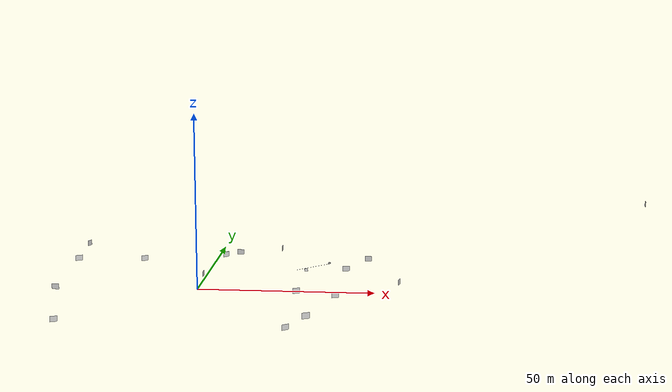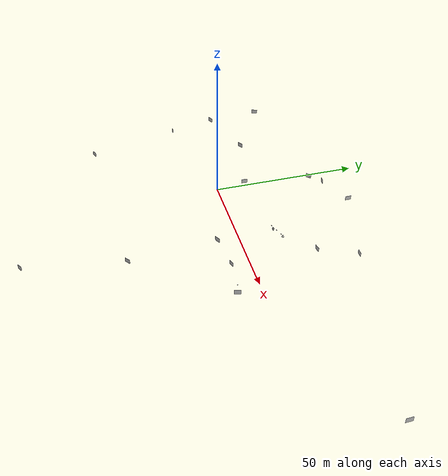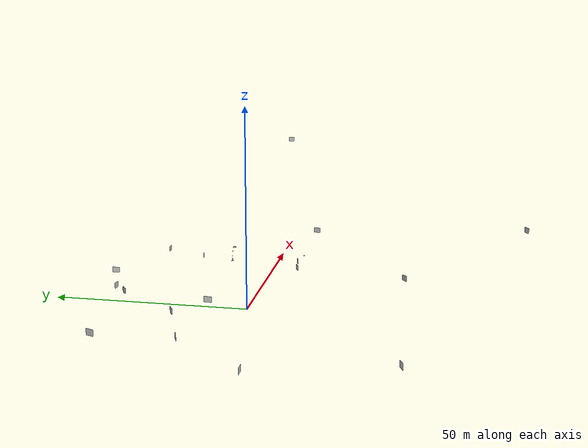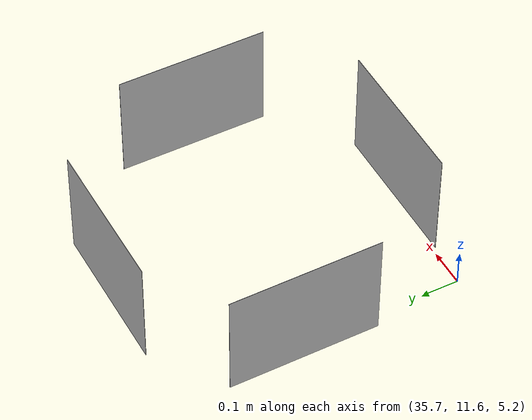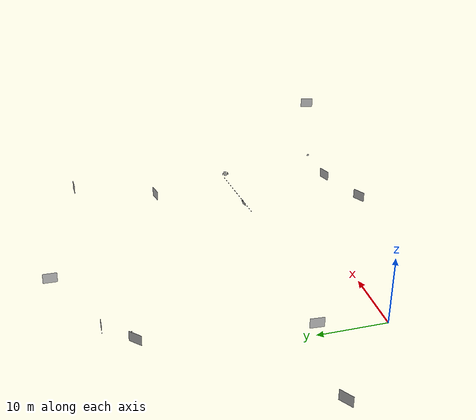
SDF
<sdf version="1.6">
 <world name="default">
  <plugin name="skyTimer" filename="libsky_timer.so"><total_minutes>35</total_minutes></plugin>
  <scene>
   <sky><time>8</time><sunrise>8</sunrise><sunset>18</sunset><clouds><speed>12</speed></clouds></sky>
   <grid>false</grid>
   <origin_visual>false</origin_visual>
   <shadows>false</shadows>
  </scene>
  <physics type="ode">
   <real_time_update_rate>500.0</real_time_update_rate>
   <max_step_size>0.002</max_step_size>
  </physics>
  <light name="sun" type="directional">
   <pose>0 0 -100 0 0 0</pose>
   <diffuse>0.8 0.8 0.8 1</diffuse>
   <specular>0.1 0.1 0.1 1</specular>
   <attenuation>
    <range>1000</range>
    <constant>0.9</constant>
    <linear>0.01</linear>
    <quadratic>0.001</quadratic>
   </attenuation>
   <direction>-0.5 0.5 -1</direction>
  </light>
  <model name="slide-0">
   <static>1</static>
   <link name="link">
    <pose>0 0 0.75 0 -0 0</pose>
    <visual name="visual">
     <geometry><box><size>2 0.001 1.5</size></box></geometry>
     <material>
      <script>
       <uri>model://slide-0/materials/scripts</uri>
       <uri>model://slide-0/materials/textures</uri>
       <name>Slides/slide_0</name>
      </script>
     </material>
    </visual>
   </link>
   <pose>38.69 -69.78 12.82 0 0 0.488187</pose>
  </model>
  <model name="slide-1">
   <static>1</static>
   <link name="link">
    <pose>0 0 0.75 0 -0 0</pose>
    <visual name="visual">
     <geometry><box><size>2 0.001 1.5</size></box></geometry>
     <material>
      <script>
       <uri>model://slide-1/materials/scripts</uri>
       <uri>model://slide-1/materials/textures</uri>
       <name>Slides/slide_1</name>
      </script>
     </material>
    </visual>
   </link>
   <pose>28.90 -7.731 1.695 0 0 0.5</pose>
  </model>
  <model name="slide-2">
   <static>1</static>
   <link name="link">
    <pose>0 0 0.75 0 -0 0</pose>
    <visual name="visual">
     <geometry><box><size>2 0.001 1.5</size></box></geometry>
     <material>
      <script>
       <uri>model://slide-2/materials/scripts</uri>
       <uri>model://slide-2/materials/textures</uri>
       <name>Slides/slide_2</name>
      </script>
     </material>
    </visual>
   </link>
   <pose>39.50 -6.121 0.2509 0 0 0.341</pose>
  </model>
  <model name="slide-3">
   <static>1</static>
   <link name="link">
    <pose>0 0 0.75 0 -0 0</pose>
    <visual name="visual">
     <geometry><box><size>2 0.001 1.5</size></box></geometry>
     <material>
      <script>
       <uri>model://slide-3/materials/scripts</uri>
       <uri>model://slide-3/materials/textures</uri>
       <name>Slides/slide_3</name>
      </script>
     </material>
    </visual>
   </link>
   <pose>57.37 -9.29 5.25 0 0 1.33</pose>
  </model>
  <model name="slide-4">
   <static>1</static>
   <link name="link">
    <pose>0 0 0.14 0 -0 0</pose>
    <visual name="visual">
     <geometry><box><size>0.373 0.001 0.28</size></box></geometry>
     <material>
      <script>
       <uri>model://slide-4/materials/scripts</uri>
       <uri>model://slide-4/materials/textures</uri>
       <name>Slides/slide_4</name>
      </script>
     </material>
    </visual>
   </link>
   <pose>48.51 -6.62 0 0 0 1.63</pose>
  </model>
  <model name="slide-5">
   <static>1</static>
   <link name="link">
    <pose>0 0 0.75 0 -0 0</pose>
    <visual name="visual">
     <geometry><box><size>2 0.001 1.5</size></box></geometry>
     <material>
      <script>
       <uri>model://slide-5/materials/scripts</uri>
       <uri>model://slide-5/materials/textures</uri>
       <name>Slides/slide_5</name>
      </script>
     </material>
    </visual>
   </link>
   <pose>0 10 1.26 0 -0 1.5</pose>
  </model>
  <model name="slide-6">
   <static>1</static>
   <link name="link">
    <pose>0 0 0.75 0 -0 0</pose>
    <visual name="visual">
     <geometry><box><size>2 0.001 1.5</size></box></geometry>
     <material>
      <script>
       <uri>model://slide-6/materials/scripts</uri>
       <uri>model://slide-6/materials/textures</uri>
       <name>Slides/slide_6</name>
      </script>
     </material>
    </visual>
   </link>
   <pose>-17.77 13.53 4.54 0 0 0.57</pose>
  </model>
  <model name="slide-7">
   <static>1</static>
   <link name="link">
    <pose>0 0 0.75 0 -0 0</pose>
    <visual name="visual">
     <geometry><box><size>2 0.001 1.5</size></box></geometry>
     <material>
      <script>
       <uri>model://slide-7/materials/scripts</uri>
       <uri>model://slide-7/materials/textures</uri>
       <name>Slides/slide_7</name>
      </script>
     </material>
    </visual>
   </link>
   <pose>-38.69 -7.40 1.22 0 0 0</pose>
  </model>
  <model name="slide-8">
   <static>1</static>
   <link name="link">
    <pose>0 0 0.15 0 -0 0</pose>
    <visual name="visual">
     <geometry><box><size>0.4 0.001 0.3</size></box></geometry>
     <material>
      <script>
       <uri>model://slide-8/materials/scripts</uri>
       <uri>model://slide-8/materials/textures</uri>
       <name>Slides/slide_8</name>
      </script>
     </material>
    </visual>
   </link>
   <pose>36.02 11.59 5.2 0 0 0</pose>
  </model>
  <model name="slide-9">
   <static>1</static>
   <link name="link">
    <pose>0 0 0.15 0 -0 0</pose>
    <visual name="visual">
     <geometry><box><size>0.4 0.001 0.3</size></box></geometry>
     <material>
      <script>
       <uri>model://slide-9/materials/scripts</uri>
       <uri>model://slide-9/materials/textures</uri>
       <name>Slides/slide_9</name>
      </script>
     </material>
    </visual>
   </link>
   <pose>36.42 11.95 5.2 0 0 1.57</pose>
  </model>
  <model name="slide-10">
   <static>1</static>
   <link name="link">
    <pose>0 0 0.15 0 -0 0</pose>
    <visual name="visual">
     <geometry><box><size>0.4 0.001 0.3</size></box></geometry>
     <material>
      <script>
       <uri>model://slide-10/materials/scripts</uri>
       <uri>model://slide-10/materials/textures</uri>
       <name>Slides/slide_10</name>
      </script>
     </material>
    </visual>
   </link>
   <pose>36.05 12.37 5.2 0 0 0</pose>
  </model>
  <model name="slide-11">
   <static>1</static>
   <link name="link">
    <pose>0 0 0.15 0 -0 0</pose>
    <visual name="visual">
     <geometry><box><size>0.4 0.001 0.3</size></box></geometry>
     <material>
      <script>
       <uri>model://slide-11/materials/scripts</uri>
       <uri>model://slide-11/materials/textures</uri>
       <name>Slides/slide_11</name>
      </script>
     </material>
    </visual>
   </link>
   <pose>35.67 12.04 5.2 0 0 1.57</pose>
  </model>
  <model name="slide-12">
   <link name="link">
    <pose>0 0 0.375 0 0 -0.066998</pose>
    <inertial><pose>0 -0.06 -0.4 0 0 0</pose><mass>2</mass></inertial>
    <visual name="visual">
     <pose>0 -0.06 0.04 0 0 0</pose>
     <geometry><box><size>1 0.001 0.75</size></box></geometry>
     <material>
      <script>
       <uri>model://slide-12/materials/scripts</uri>
       <uri>model://slide-12/materials/textures</uri>
       <name>Slides/slide_12</name>
      </script>
     </material>
    </visual>
    <visual name="cyl1">
     <pose>0.03431 -0.046425 0.573322 -2e-06 1.39818 -0.062822</pose>
     <geometry><cylinder><radius>0.0508222</radius><length>0.317208</length></cylinder></geometry>
     <material>
      <lighting>1</lighting>
      <script><uri>file://media/materials/scripts/gazebo.material</uri><name>Gazebo/Black</name></script>
     </material>
    </visual>
    <visual name="cyl2">
     <pose>0.04739 -0.053844 0.491524 0 -0 0</pose>
     <geometry><cylinder><radius>0.0289497</radius><length>0.183496</length></cylinder></geometry>
     <material>
      <lighting>1</lighting>
      <script><uri>file://media/materials/scripts/gazebo.material</uri><name>Gazebo/Black</name></script>
     </material>
    </visual>
   </link>
   <pose>29.5766 10.7955 3.0494 -0.349 0.0461 0.2552</pose>
   <joint name="bondinho_world" type="revolute">
    <pose>0.03431 -0.046425 0.573322 -2e-06 1.39818 -0.062822</pose>
    <parent>world</parent>
    <child>link</child>
    <axis><xyz>0 0 1</xyz></axis>
   </joint>
  </model>
  <model name="slide-13">
   <static>1</static>
   <link name="link">
    <pose>0 0 0.75 0 -0 0</pose>
    <visual name="visual">
     <geometry><box><size>2 0.001 1.5</size></box></geometry>
     <material>
      <script>
       <uri>model://slide-13/materials/scripts</uri>
       <uri>model://slide-13/materials/textures</uri>
       <name>Slides/slide_13</name>
      </script>
     </material>
    </visual>
   </link>
   <pose>45.618 34.68 0.3702 0 -0 0</pose>
  </model>
  <model name="slide-14">
   <static>1</static>
   <link name="link">
    <pose>0 0 0.75 0 -0 0</pose>
    <visual name="visual">
     <geometry><box><size>2 0.001 1.5</size></box></geometry>
     <material>
      <script>
       <uri>model://slide-14/materials/scripts</uri>
       <uri>model://slide-14/materials/textures</uri>
       <name>Slides/slide_14</name>
      </script>
     </material>
    </visual>
   </link>
   <pose>40 22.434 0.420 0 -0 0.18</pose>
  </model>
  <model name="slide-15">
   <static>1</static>
   <link name="link">
    <pose>0 0 0.75 0 -0 0</pose>
    <visual name="visual">
     <geometry><box><size>2 0.001 1.5</size></box></geometry>
     <material>
      <script>
       <uri>model://slide-15/materials/scripts</uri>
       <uri>model://slide-15/materials/textures</uri>
       <name>Slides/slide_15</name>
      </script>
     </material>
    </visual>
   </link>
   <pose>18.86 41.64 1.36 0 -0 1.56</pose>
  </model>
  <model name="slide-16">
   <link name="link">
    <pose>0 0 0.75 0 -0 0</pose>
    <visual name="visual">
     <geometry><box><size>2 0.001 1.5</size></box></geometry>
     <material>
      <script>
       <uri>model://slide-16/materials/scripts</uri>
       <uri>model://slide-16/materials/textures</uri>
       <name>Slides/slide_16</name>
      </script>
     </material>
    </visual>
    <collision name="collision_0">
     <pose>0 0 -0.25 0 -0 0</pose>
     <geometry><box><size>2 1 1</size></box></geometry>
    </collision>
   </link>
   <pose>6.76 36.64 1.173 0 0 -0.071</pose>
  </model>
  <model name="slide-17">
   <static>1</static>
   <link name="link">
    <pose>0 0 0.75 0 -0 0</pose>
    <visual name="visual">
     <geometry><box><size>2 0.001 1.5</size></box></geometry>
     <material>
      <script>
       <uri>model://slide-17/materials/scripts</uri>
       <uri>model://slide-17/materials/textures</uri>
       <name>Slides/slide_17</name>
      </script>
     </material>
    </visual>
    <collision name="collision"><geometry><box><size>2 0.001 1.5</size></box></geometry></collision>
    <visual name="LED">
     <pose>0.5 0 0.8 0 0 0</pose>
     <geometry><cylinder><length>0.16</length><radius>0.07</radius></cylinder></geometry>
     <plugin name="blink" filename="libBlinkVisualPlugin.so">
      <color_a>0 0 0 1</color_a>
      <color_b>0.8 0.4 0.1 1</color_b>
      <period>0.5</period>
      <use_wall_time>true</use_wall_time>
     </plugin>
    </visual>
   </link>
   <pose>2.899 32.986 1.25 0 0 0.739</pose>
  </model>
  <model name="slide-18">
   <static>1</static>
   <link name="link">
    <pose>0 0 0.75 0 -0 0</pose>
    <visual name="visual">
     <geometry><box><size>2 0.001 1.5</size></box></geometry>
     <material>
      <script>
       <uri>model://slide-18/materials/scripts</uri>
       <uri>model://slide-18/materials/textures</uri>
       <name>Slides/slide_18</name>
      </script>
     </material>
    </visual>
   </link>
   <pose>-36.65 24.81 5.92 0 0 1.2256</pose>
  </model>
  <model name="slide-19">
   <static>1</static>
   <link name="link">
    <pose>0 0 0.75 0 -0 0</pose>
    <visual name="visual">
     <geometry><box><size>2 0.001 1.5</size></box></geometry>
     <material>
      <script>
       <uri>model://slide-19/materials/scripts</uri>
       <uri>model://slide-19/materials/textures</uri>
       <name>Slides/slide_19</name>
      </script>
     </material>
    </visual>
   </link>
   <pose>-35.36 6.78 5.92 0 0 0.455</pose>
  </model>
  <model name="slide-20">
   <static>1</static>
   <link name="link">
    <pose>0 0 0.75 0 -0 0</pose>
    <visual name="visual">
     <geometry><box><size>2 0.001 1.5</size></box></geometry>
     <material>
      <script>
       <uri>model://slide-20/materials/scripts</uri>
       <uri>model://slide-20/materials/textures</uri>
       <name>Slides/slide_20</name>
      </script>
     </material>
    </visual>
   </link>
   <pose>-30.77 -38.86 1.204 0 0 0.40</pose>
  </model>
  <model name="slide-21">
   <static>1</static>
   <link name="link">
    <pose>0 0 0.75 0 -0 0</pose>
    <visual name="visual">
     <geometry><box><size>2 0.001 1.5</size></box></geometry>
     <material>
      <script>
       <uri>model://slide-21/materials/scripts</uri>
       <uri>model://slide-21/materials/textures</uri>
       <name>Slides/slide_21</name>
      </script>
     </material>
    </visual>
   </link>
   <pose>29.63 -37.38 0.11 0 0 0.65</pose>
  </model>
  <model name="slide-22">
   <static>1</static>
   <link name="link">
    <pose>0 0 0.75 0 -0 0</pose>
    <visual name="visual">
     <geometry><box><size>2 0.001 1.5</size></box></geometry>
     <material>
      <script>
       <uri>model://slide-22/materials/scripts</uri>
       <uri>model://slide-22/materials/textures</uri>
       <name>Slides/slide_22</name>
      </script>
     </material>
    </visual>
   </link>
   <pose>124.56 10.55 23.94 0 0 1.61</pose>
  </model>
  <model name="cable_pa">
   <pose>31.009 11.365 4.1879 0 0.0385 0</pose>
   <static>1</static>
   <link name="link">
    <pose>-4.6e-05 -4.8e-05 3e-06 -0 1.37215 0.197162</pose>
    <visual name="visual">
     <geometry><cylinder><radius>0.0124127</radius><length>9.27119</length></cylinder></geometry>
     <material>
      <lighting>1</lighting>
      <script><uri>file://media/materials/scripts/gazebo.material</uri><name>Gazebo/Black</name></script>
     </material>
    </visual>
   </link>
  </model>
 </world>
</sdf>
